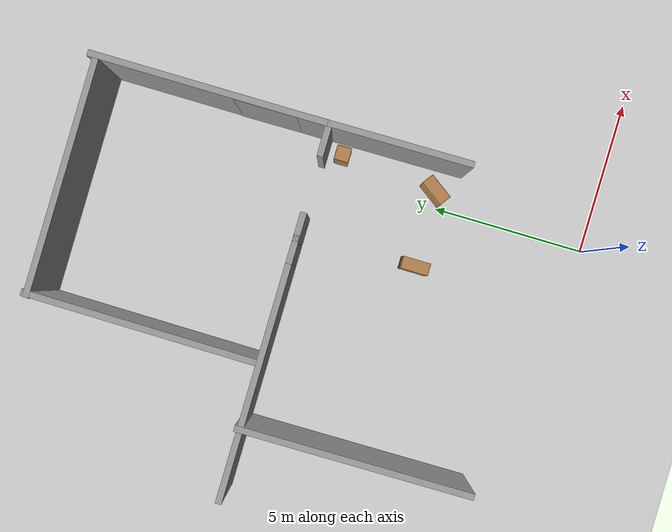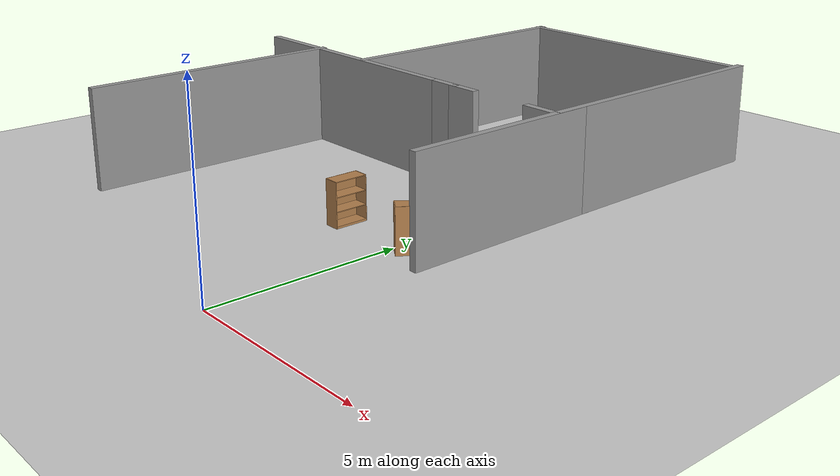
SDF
<sdf version="1.4">
 <world name="default">
  <model name="ground_plane">
   <static>1</static>
   <link name="link">
    <collision name="collision">
     <geometry><plane><normal>0 0 1</normal><size>100 100</size></plane></geometry>
     <surface><friction><ode><mu>100</mu><mu2>50</mu2></ode></friction></surface>
    </collision>
    <visual name="visual">
     <cast_shadows>0</cast_shadows>
     <geometry><plane><normal>0 0 1</normal><size>100 100</size></plane></geometry>
     <material>
      <script><uri>file://media/materials/scripts/gazebo.material</uri><name>Gazebo/Grey</name></script>
     </material>
    </visual>
    <velocity_decay><linear>0</linear><angular>0</angular></velocity_decay>
   </link>
  </model>
  <model name="grey_wall_3">
   <static>1</static>
   <link name="link">
    <pose>0 0 1.4 0 -0 0</pose>
    <collision name="collision"><geometry><box><size>7.5 0.2 2.8</size></box></geometry></collision>
    <visual name="visual">
     <cast_shadows>0</cast_shadows>
     <geometry><box><size>7.5 0.2 2.8</size></box></geometry>
     <material>
      <script>
       <uri>model://grey_wall/materials/scripts</uri>
       <uri>model://grey_wall/materials/textures</uri>
       <name>vrc/grey_wall</name>
      </script>
     </material>
    </visual>
    <velocity_decay><linear>0</linear><angular>0</angular></velocity_decay>
   </link>
   <pose>1.28557 12.7935 0.00212 0 0 -1.57102</pose>
  </model>
  <model name="grey_wall_5">
   <static>1</static>
   <link name="link">
    <pose>0 0 1.4 0 -0 0</pose>
    <collision name="collision"><geometry><box><size>7.5 0.2 2.8</size></box></geometry></collision>
    <visual name="visual">
     <cast_shadows>0</cast_shadows>
     <geometry><box><size>7.5 0.2 2.8</size></box></geometry>
     <material>
      <script>
       <uri>model://grey_wall/materials/scripts</uri>
       <uri>model://grey_wall/materials/textures</uri>
       <name>vrc/grey_wall</name>
      </script>
     </material>
    </visual>
    <velocity_decay><linear>0</linear><angular>0</angular></velocity_decay>
   </link>
   <pose>-2.53554 16.2683 0 0 -0 0</pose>
  </model>
  <model name="cabinet">
   <static>1</static>
   <link name="cabinet_bottom_plate">
    <inertial>
     <pose>0 0 -1 0 -0 0</pose>
     <inertia><ixx>2.05</ixx><ixy>0</ixy><ixz>0</ixz><iyy>2.05</iyy><iyz>0</iyz><izz>2.05</izz></inertia>
     <mass>25</mass>
    </inertial>
    <collision name="cabinet_bottom_plate_geom">
     <pose>0 0 0.01 0 -0 0</pose>
     <geometry><box><size>0.45 0.45 0.02</size></box></geometry>
    </collision>
    <visual name="cabinet_bottom_plate_geom_visual">
     <pose>0 0 0.01 0 -0 0</pose>
     <geometry><box><size>0.45 0.45 0.02</size></box></geometry>
     <material>
      <script><uri>file://media/materials/scripts/gazebo.material</uri><name>Gazebo/Wood</name></script>
     </material>
    </visual>
    <collision name="cabinet_bottom_plate_geom_cabinet_back_plate">
     <pose>0.235 0 0.51 0 -0 0</pose>
     <geometry><box><size>0.02 0.45 1.02</size></box></geometry>
    </collision>
    <visual name="cabinet_bottom_plate_geom_cabinet_back_plate_visual">
     <pose>0.235 0 0.51 0 -0 0</pose>
     <geometry><box><size>0.02 0.45 1.02</size></box></geometry>
     <material>
      <script><uri>file://media/materials/scripts/gazebo.material</uri><name>Gazebo/Wood</name></script>
     </material>
    </visual>
    <collision name="cabinet_bottom_plate_geom_cabinet_left_plate">
     <pose>0 0.235 0.51 0 -0 0</pose>
     <geometry><box><size>0.45 0.02 1.02</size></box></geometry>
    </collision>
    <visual name="cabinet_bottom_plate_geom_cabinet_left_plate_visual">
     <pose>0 0.235 0.51 0 -0 0</pose>
     <geometry><box><size>0.45 0.02 1.02</size></box></geometry>
     <material>
      <script><uri>file://media/materials/scripts/gazebo.material</uri><name>Gazebo/Wood</name></script>
     </material>
    </visual>
    <collision name="cabinet_bottom_plate_geom_cabinet_middle_plate">
     <pose>0 0 0.51 0 -0 0</pose>
     <geometry><box><size>0.45 0.45 0.02</size></box></geometry>
    </collision>
    <visual name="cabinet_bottom_plate_geom_cabinet_middle_plate_visual">
     <pose>0 0 0.51 0 -0 0</pose>
     <geometry><box><size>0.45 0.45 0.02</size></box></geometry>
     <material>
      <script><uri>file://media/materials/scripts/gazebo.material</uri><name>Gazebo/Wood</name></script>
     </material>
    </visual>
    <collision name="cabinet_bottom_plate_geom_cabinet_right_plate">
     <pose>0 -0.235 0.51 0 -0 0</pose>
     <geometry><box><size>0.45 0.02 1.02</size></box></geometry>
    </collision>
    <visual name="cabinet_bottom_plate_geom_cabinet_right_plate_visual">
     <pose>0 -0.235 0.51 0 -0 0</pose>
     <geometry><box><size>0.45 0.02 1.02</size></box></geometry>
     <material>
      <script><uri>file://media/materials/scripts/gazebo.material</uri><name>Gazebo/Wood</name></script>
     </material>
    </visual>
    <collision name="cabinet_bottom_plate_geom_cabinet_top_plate">
     <pose>0 0 1.01 0 -0 0</pose>
     <geometry><box><size>0.45 0.45 0.02</size></box></geometry>
    </collision>
    <visual name="cabinet_bottom_plate_geom_cabinet_top_plate_visual">
     <pose>0 0 1.01 0 -0 0</pose>
     <geometry><box><size>0.45 0.45 0.02</size></box></geometry>
     <material>
      <script><uri>file://media/materials/scripts/gazebo.material</uri><name>Gazebo/Wood</name></script>
     </material>
    </visual>
    <velocity_decay><linear>0</linear><angular>0</angular></velocity_decay>
   </link>
   <pose>0.764642 8.40607 0.028898 0 -0 1.56926</pose>
  </model>
  <model name="bookshelf">
   <static>1</static>
   <link name="link">
    <inertial><mass>1</mass></inertial>
    <collision name="back">
     <pose>0 0.005 0.6 0 -0 0</pose>
     <geometry><box><size>0.9 0.01 1.2</size></box></geometry>
    </collision>
    <visual name="visual1">
     <pose>0 0.005 0.6 0 -0 0</pose>
     <geometry><box><size>0.9 0.01 1.2</size></box></geometry>
     <material>
      <script><uri>file://media/materials/scripts/gazebo.material</uri><name>Gazebo/Wood</name></script>
     </material>
    </visual>
    <collision name="left_side">
     <pose>0.45 -0.195 0.6 0 -0 0</pose>
     <geometry><box><size>0.02 0.4 1.2</size></box></geometry>
    </collision>
    <visual name="visual2">
     <pose>0.45 -0.195 0.6 0 -0 0</pose>
     <geometry><box><size>0.02 0.4 1.2</size></box></geometry>
     <material>
      <script><uri>file://media/materials/scripts/gazebo.material</uri><name>Gazebo/Wood</name></script>
     </material>
    </visual>
    <collision name="right_side">
     <pose>-0.45 -0.195 0.6 0 -0 0</pose>
     <geometry><box><size>0.02 0.4 1.2</size></box></geometry>
    </collision>
    <visual name="visual3">
     <pose>-0.45 -0.195 0.6 0 -0 0</pose>
     <geometry><box><size>0.02 0.4 1.2</size></box></geometry>
     <material>
      <script><uri>file://media/materials/scripts/gazebo.material</uri><name>Gazebo/Wood</name></script>
     </material>
    </visual>
    <collision name="bottom">
     <pose>0 -0.195 0.03 0 -0 0</pose>
     <geometry><box><size>0.88 0.4 0.06</size></box></geometry>
    </collision>
    <visual name="visual4">
     <pose>0 -0.195 0.03 0 -0 0</pose>
     <geometry><box><size>0.88 0.4 0.06</size></box></geometry>
     <material>
      <script><uri>file://media/materials/scripts/gazebo.material</uri><name>Gazebo/Wood</name></script>
     </material>
    </visual>
    <collision name="top">
     <pose>0 -0.195 1.19 0 -0 0</pose>
     <geometry><box><size>0.88 0.4 0.02</size></box></geometry>
    </collision>
    <visual name="visual5">
     <pose>0 -0.195 1.19 0 -0 0</pose>
     <geometry><box><size>0.88 0.4 0.02</size></box></geometry>
     <material>
      <script><uri>file://media/materials/scripts/gazebo.material</uri><name>Gazebo/Wood</name></script>
     </material>
    </visual>
    <collision name="low_shelf">
     <pose>0 -0.195 0.43 0 -0 0</pose>
     <geometry><box><size>0.88 0.4 0.02</size></box></geometry>
    </collision>
    <visual name="visual6">
     <pose>0 -0.195 0.43 0 -0 0</pose>
     <geometry><box><size>0.88 0.4 0.02</size></box></geometry>
     <material>
      <script><uri>file://media/materials/scripts/gazebo.material</uri><name>Gazebo/Wood</name></script>
     </material>
    </visual>
    <collision name="high_shelf">
     <pose>0 -0.195 0.8 0 -0 0</pose>
     <geometry><box><size>0.88 0.4 0.02</size></box></geometry>
    </collision>
    <visual name="visual7">
     <pose>0 -0.195 0.8 0 -0 0</pose>
     <geometry><box><size>0.88 0.4 0.02</size></box></geometry>
     <material>
      <script><uri>file://media/materials/scripts/gazebo.material</uri><name>Gazebo/Wood</name></script>
     </material>
    </visual>
    <velocity_decay><linear>0</linear><angular>0</angular></velocity_decay>
   </link>
   <pose>0.643961 5.11216 0 0 0 -2.18701</pose>
  </model>
  <model name="grey_wall">
   <static>1</static>
   <link name="link">
    <pose>0 0 1.4 0 -0 0</pose>
    <collision name="collision"><geometry><box><size>7.5 0.2 2.8</size></box></geometry></collision>
    <visual name="visual">
     <cast_shadows>0</cast_shadows>
     <geometry><box><size>7.5 0.2 2.8</size></box></geometry>
     <material>
      <script>
       <uri>model://grey_wall/materials/scripts</uri>
       <uri>model://grey_wall/materials/textures</uri>
       <name>vrc/grey_wall</name>
      </script>
     </material>
    </visual>
    <velocity_decay><linear>0</linear><angular>0</angular></velocity_decay>
   </link>
   <pose>1.29686 8.21158 -0 0 0 -1.56399</pose>
  </model>
  <model name="grey_wall_8">
   <static>1</static>
   <link name="link">
    <pose>0 0 1.4 0 -0 0</pose>
    <collision name="collision"><geometry><box><size>7.5 0.2 2.8</size></box></geometry></collision>
    <visual name="visual">
     <cast_shadows>0</cast_shadows>
     <geometry><box><size>7.5 0.2 2.8</size></box></geometry>
     <material>
      <script>
       <uri>model://grey_wall/materials/scripts</uri>
       <uri>model://grey_wall/materials/textures</uri>
       <name>vrc/grey_wall</name>
      </script>
     </material>
    </visual>
    <velocity_decay><linear>0</linear><angular>0</angular></velocity_decay>
   </link>
   <pose>-8.25909 5.41188 0 0 -0 1.5757</pose>
  </model>
  <model name="grey_wall_9">
   <static>1</static>
   <link name="link">
    <pose>0 0 1.4 0 -0 0</pose>
    <collision name="collision"><geometry><box><size>7.5 0.2 2.8</size></box></geometry></collision>
    <visual name="visual">
     <cast_shadows>0</cast_shadows>
     <geometry><box><size>7.5 0.2 2.8</size></box></geometry>
     <material>
      <script>
       <uri>model://grey_wall/materials/scripts</uri>
       <uri>model://grey_wall/materials/textures</uri>
       <name>vrc/grey_wall</name>
      </script>
     </material>
    </visual>
    <velocity_decay><linear>0</linear><angular>0</angular></velocity_decay>
   </link>
   <pose>-6.84015 8.98073 0 0 -0 0</pose>
  </model>
  <model name="grey_wall_small">
   <static>1</static>
   <link name="link">
    <pose>0 0 1.4 0 -0 0</pose>
    <collision name="collision"><geometry><box><size>0.9375 0.2 2.8</size></box></geometry></collision>
    <visual name="visual">
     <cast_shadows>0</cast_shadows>
     <geometry><box><size>0.9375 0.2 2.8</size></box></geometry>
     <material>
      <script>
       <uri>model://grey_wall_small/materials/scripts</uri>
       <uri>model://grey_wall_small/materials/textures</uri>
       <name>vrc/grey_wall_small</name>
      </script>
     </material>
    </visual>
    <velocity_decay><linear>0</linear><angular>0</angular></velocity_decay>
   </link>
   <pose>-2.66651 8.98103 0 0 -0 0</pose>
  </model>
  <model name="grey_wall_small_1">
   <static>1</static>
   <link name="link">
    <pose>0 0 1.4 0 -0 0</pose>
    <collision name="collision"><geometry><box><size>0.9375 0.2 2.8</size></box></geometry></collision>
    <visual name="visual">
     <cast_shadows>0</cast_shadows>
     <geometry><box><size>0.9375 0.2 2.8</size></box></geometry>
     <material>
      <script>
       <uri>model://grey_wall_small/materials/scripts</uri>
       <uri>model://grey_wall_small/materials/textures</uri>
       <name>vrc/grey_wall_small</name>
      </script>
     </material>
    </visual>
    <velocity_decay><linear>0</linear><angular>0</angular></velocity_decay>
   </link>
   <pose>-1.95419 8.97914 -0 0 -0 0</pose>
  </model>
  <model name="grey_wall_small_2">
   <static>1</static>
   <link name="link">
    <pose>0 0 1.4 0 -0 0</pose>
    <collision name="collision"><geometry><box><size>0.9375 0.2 2.8</size></box></geometry></collision>
    <visual name="visual">
     <cast_shadows>0</cast_shadows>
     <geometry><box><size>0.9375 0.2 2.8</size></box></geometry>
     <material>
      <script>
       <uri>model://grey_wall_small/materials/scripts</uri>
       <uri>model://grey_wall_small/materials/textures</uri>
       <name>vrc/grey_wall_small</name>
      </script>
     </material>
    </visual>
    <velocity_decay><linear>0</linear><angular>0</angular></velocity_decay>
   </link>
   <pose>0.730258 8.99036 -0 0 -0 0</pose>
  </model>
  <model name="red_image">
   <static>1</static>
   <link name="link">
    <collision name="collision"><geometry><box><size>0.21 0.0001 0.16</size></box></geometry></collision>
    <visual name="visual">
     <cast_shadows>0</cast_shadows>
     <geometry><box><size>0.21 0.0001 0.16</size></box></geometry>
     <material>
      <script>
       <uri>model://red_image/materials/scripts</uri>
       <uri>model://red_image/materials/textures</uri>
       <name>red_image/Image</name>
      </script>
     </material>
    </visual>
    <velocity_decay><linear>0</linear><angular>0</angular></velocity_decay>
   </link>
   <pose>-1.71032 8.87905 0.357122 0 -0 0</pose>
  </model>
  <model name="bookshelf_1">
   <static>1</static>
   <link name="link">
    <inertial><mass>1</mass></inertial>
    <collision name="back">
     <pose>0 0.005 0.6 0 -0 0</pose>
     <geometry><box><size>0.9 0.01 1.2</size></box></geometry>
    </collision>
    <visual name="visual1">
     <pose>0 0.005 0.6 0 -0 0</pose>
     <geometry><box><size>0.9 0.01 1.2</size></box></geometry>
     <material>
      <script><uri>file://media/materials/scripts/gazebo.material</uri><name>Gazebo/Wood</name></script>
     </material>
    </visual>
    <collision name="left_side">
     <pose>0.45 -0.195 0.6 0 -0 0</pose>
     <geometry><box><size>0.02 0.4 1.2</size></box></geometry>
    </collision>
    <visual name="visual2">
     <pose>0.45 -0.195 0.6 0 -0 0</pose>
     <geometry><box><size>0.02 0.4 1.2</size></box></geometry>
     <material>
      <script><uri>file://media/materials/scripts/gazebo.material</uri><name>Gazebo/Wood</name></script>
     </material>
    </visual>
    <collision name="right_side">
     <pose>-0.45 -0.195 0.6 0 -0 0</pose>
     <geometry><box><size>0.02 0.4 1.2</size></box></geometry>
    </collision>
    <visual name="visual3">
     <pose>-0.45 -0.195 0.6 0 -0 0</pose>
     <geometry><box><size>0.02 0.4 1.2</size></box></geometry>
     <material>
      <script><uri>file://media/materials/scripts/gazebo.material</uri><name>Gazebo/Wood</name></script>
     </material>
    </visual>
    <collision name="bottom">
     <pose>0 -0.195 0.03 0 -0 0</pose>
     <geometry><box><size>0.88 0.4 0.06</size></box></geometry>
    </collision>
    <visual name="visual4">
     <pose>0 -0.195 0.03 0 -0 0</pose>
     <geometry><box><size>0.88 0.4 0.06</size></box></geometry>
     <material>
      <script><uri>file://media/materials/scripts/gazebo.material</uri><name>Gazebo/Wood</name></script>
     </material>
    </visual>
    <collision name="top">
     <pose>0 -0.195 1.19 0 -0 0</pose>
     <geometry><box><size>0.88 0.4 0.02</size></box></geometry>
    </collision>
    <visual name="visual5">
     <pose>0 -0.195 1.19 0 -0 0</pose>
     <geometry><box><size>0.88 0.4 0.02</size></box></geometry>
     <material>
      <script><uri>file://media/materials/scripts/gazebo.material</uri><name>Gazebo/Wood</name></script>
     </material>
    </visual>
    <collision name="low_shelf">
     <pose>0 -0.195 0.43 0 -0 0</pose>
     <geometry><box><size>0.88 0.4 0.02</size></box></geometry>
    </collision>
    <visual name="visual6">
     <pose>0 -0.195 0.43 0 -0 0</pose>
     <geometry><box><size>0.88 0.4 0.02</size></box></geometry>
     <material>
      <script><uri>file://media/materials/scripts/gazebo.material</uri><name>Gazebo/Wood</name></script>
     </material>
    </visual>
    <collision name="high_shelf">
     <pose>0 -0.195 0.8 0 -0 0</pose>
     <geometry><box><size>0.88 0.4 0.02</size></box></geometry>
    </collision>
    <visual name="visual7">
     <pose>0 -0.195 0.8 0 -0 0</pose>
     <geometry><box><size>0.88 0.4 0.02</size></box></geometry>
     <material>
      <script><uri>file://media/materials/scripts/gazebo.material</uri><name>Gazebo/Wood</name></script>
     </material>
    </visual>
    <velocity_decay><linear>0</linear><angular>0</angular></velocity_decay>
   </link>
   <pose>-2.21645 5.18694 0 0 -0 1.56891</pose>
  </model>
  <model name="grey_wall_6">
   <static>1</static>
   <link name="link">
    <pose>0 0 1.4 0 -0 0</pose>
    <collision name="collision"><geometry><box><size>7.5 0.2 2.8</size></box></geometry></collision>
    <visual name="visual">
     <cast_shadows>0</cast_shadows>
     <geometry><box><size>7.5 0.2 2.8</size></box></geometry>
     <material>
      <script>
       <uri>model://grey_wall/materials/scripts</uri>
       <uri>model://grey_wall/materials/textures</uri>
       <name>vrc/grey_wall</name>
      </script>
     </material>
    </visual>
    <velocity_decay><linear>0</linear><angular>0</angular></velocity_decay>
   </link>
   <pose>-6.18764 12.6933 0 0 0 -1.57809</pose>
  </model>
 </world>
</sdf>
